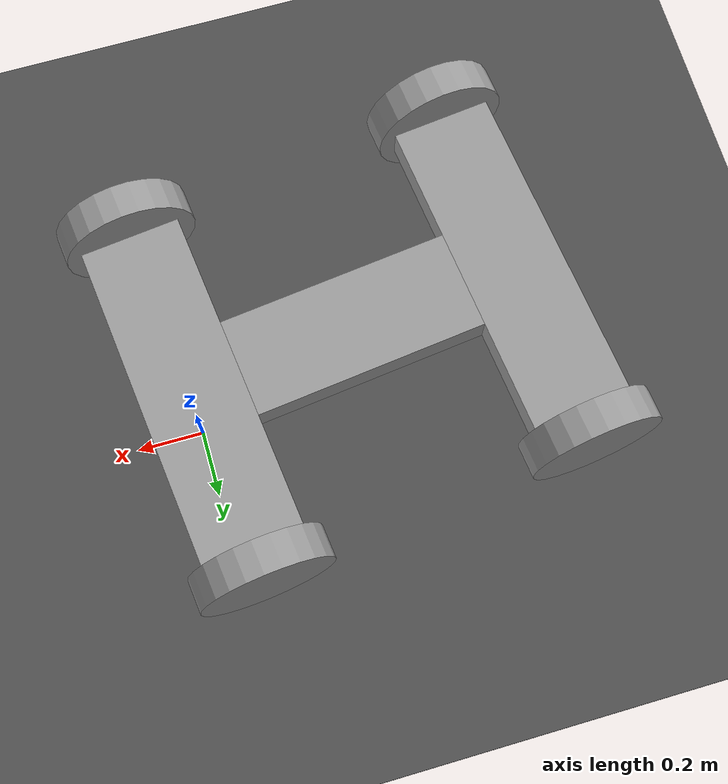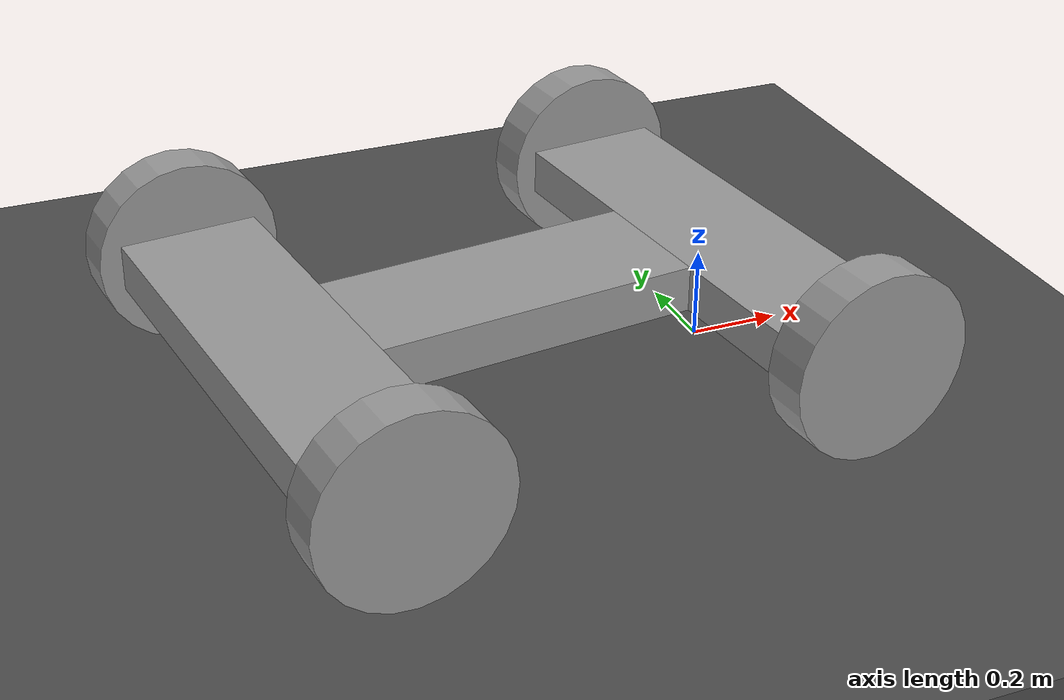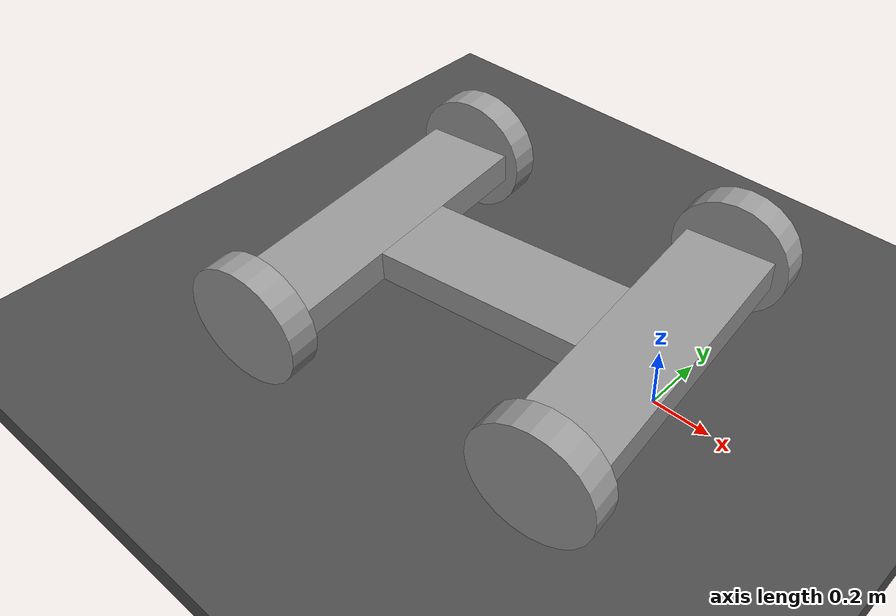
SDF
<sdf version="1.6">
 <world name="default">
  <model name="ground_plane">
   <static>1</static>
   <link name="link">
    <collision name="collision">
     <geometry><plane><normal>0 0 1</normal><size>100 100</size></plane></geometry>
     <surface><friction><ode><mu>100</mu><mu2>50</mu2></ode></friction></surface>
    </collision>
    <visual name="visual">
     <cast_shadows>0</cast_shadows>
     <geometry><plane><normal>0 0 1</normal><size>100 100</size></plane></geometry>
     <material>
      <script><uri>file://media/materials/scripts/gazebo.material</uri><name>Gazebo/Grey</name></script>
     </material>
    </visual>
   </link>
  </model>
  <model name="robot">
   <link name="link_0">
    <inertial>
     <mass>1</mass>
     <inertia>
      <ixx>0.166667</ixx>
      <ixy>0</ixy>
      <ixz>0</ixz>
      <iyy>0.166667</iyy>
      <iyz>0</iyz>
      <izz>0.166667</izz>
     </inertia>
    </inertial>
    <visual name="visual">
     <geometry><box><size>0.3 1 0.1</size></box></geometry>
     <material>
      <lighting>1</lighting>
      <script><uri>file://media/materials/scripts/gazebo.material</uri><name>Gazebo/Grey</name></script>
      <shader type="pixel"><normal_map>__default__</normal_map></shader>
      <ambient>0.3 0.3 0.3 1</ambient>
      <diffuse>0.7 0.7 0.7 1</diffuse>
      <specular>0.01 0.01 0.01 1</specular>
      <emissive>0 0 0 1</emissive>
     </material>
    </visual>
    <collision name="collision">
     <geometry><box><size>0.3 1 0.1</size></box></geometry>
     <surface>
      <friction>
       <ode><mu>1</mu><mu2>1</mu2><fdir1>0 0 0</fdir1><slip1>0</slip1><slip2>0</slip2></ode>
       <torsional>
        <coefficient>1</coefficient>
        <patch_radius>0</patch_radius>
        <surface_radius>0</surface_radius>
        <use_patch_radius>1</use_patch_radius>
        <ode><slip>0</slip></ode>
       </torsional>
      </friction>
      <bounce><restitution_coefficient>0</restitution_coefficient><threshold>1e+06</threshold></bounce>
      <contact>
       <collide_without_contact>0</collide_without_contact>
       <collide_without_contact_bitmask>1</collide_without_contact_bitmask>
       <collide_bitmask>1</collide_bitmask>
       <ode>
        <soft_cfm>0</soft_cfm>
        <soft_erp>0.2</soft_erp>
        <kp>1e+13</kp>
        <kd>1</kd>
        <max_vel>0.01</max_vel>
        <min_depth>0</min_depth>
       </ode>
       <bullet>
        <split_impulse>1</split_impulse>
        <split_impulse_penetration_threshold>-0.01</split_impulse_penetration_threshold>
        <soft_cfm>0</soft_cfm>
        <soft_erp>0.2</soft_erp>
        <kp>1e+13</kp>
        <kd>1</kd>
       </bullet>
      </contact>
     </surface>
    </collision>
   </link>
   <link name="link_0_0">
    <pose>-0.5 0 0 0 -0 0</pose>
    <inertial>
     <mass>1</mass>
     <inertia>
      <ixx>0.166667</ixx>
      <ixy>0</ixy>
      <ixz>0</ixz>
      <iyy>0.166667</iyy>
      <iyz>0</iyz>
      <izz>0.166667</izz>
     </inertia>
    </inertial>
    <visual name="visual">
     <geometry><box><size>0.7 0.3 0.1</size></box></geometry>
     <material>
      <lighting>1</lighting>
      <script><uri>file://media/materials/scripts/gazebo.material</uri><name>Gazebo/Grey</name></script>
      <shader type="pixel"><normal_map>__default__</normal_map></shader>
      <ambient>0.3 0.3 0.3 1</ambient>
      <diffuse>0.7 0.7 0.7 1</diffuse>
      <specular>0.01 0.01 0.01 1</specular>
      <emissive>0 0 0 1</emissive>
     </material>
    </visual>
    <collision name="collision">
     <geometry><box><size>0.7 0.3 0.1</size></box></geometry>
     <surface>
      <friction>
       <ode><mu>1</mu><mu2>1</mu2><fdir1>0 0 0</fdir1><slip1>0</slip1><slip2>0</slip2></ode>
       <torsional>
        <coefficient>1</coefficient>
        <patch_radius>0</patch_radius>
        <surface_radius>0</surface_radius>
        <use_patch_radius>1</use_patch_radius>
        <ode><slip>0</slip></ode>
       </torsional>
      </friction>
      <bounce><restitution_coefficient>0</restitution_coefficient><threshold>1e+06</threshold></bounce>
      <contact>
       <collide_without_contact>0</collide_without_contact>
       <collide_without_contact_bitmask>1</collide_without_contact_bitmask>
       <collide_bitmask>1</collide_bitmask>
       <ode>
        <soft_cfm>0</soft_cfm>
        <soft_erp>0.2</soft_erp>
        <kp>1e+13</kp>
        <kd>1</kd>
        <max_vel>0.01</max_vel>
        <min_depth>0</min_depth>
       </ode>
       <bullet>
        <split_impulse>1</split_impulse>
        <split_impulse_penetration_threshold>-0.01</split_impulse_penetration_threshold>
        <soft_cfm>0</soft_cfm>
        <soft_erp>0.2</soft_erp>
        <kp>1e+13</kp>
        <kd>1</kd>
       </bullet>
      </contact>
     </surface>
    </collision>
   </link>
   <link name="link_0_clone">
    <pose>-1 0 0 0 -0 0</pose>
    <inertial>
     <mass>1</mass>
     <inertia>
      <ixx>0.166667</ixx>
      <ixy>0</ixy>
      <ixz>0</ixz>
      <iyy>0.166667</iyy>
      <iyz>0</iyz>
      <izz>0.166667</izz>
     </inertia>
    </inertial>
    <visual name="visual">
     <geometry><box><size>0.3 1 0.1</size></box></geometry>
     <material>
      <lighting>1</lighting>
      <script><uri>file://media/materials/scripts/gazebo.material</uri><name>Gazebo/Grey</name></script>
      <shader type="pixel"><normal_map>__default__</normal_map></shader>
      <ambient>0.3 0.3 0.3 1</ambient>
      <diffuse>0.7 0.7 0.7 1</diffuse>
      <specular>0.01 0.01 0.01 1</specular>
      <emissive>0 0 0 1</emissive>
     </material>
    </visual>
    <collision name="collision">
     <geometry><box><size>0.3 1 0.1</size></box></geometry>
     <surface>
      <friction>
       <ode><mu>1</mu><mu2>1</mu2><fdir1>0 0 0</fdir1><slip1>0</slip1><slip2>0</slip2></ode>
       <torsional>
        <coefficient>1</coefficient>
        <patch_radius>0</patch_radius>
        <surface_radius>0</surface_radius>
        <use_patch_radius>1</use_patch_radius>
        <ode><slip>0</slip></ode>
       </torsional>
      </friction>
      <bounce><restitution_coefficient>0</restitution_coefficient><threshold>1e+06</threshold></bounce>
      <contact>
       <collide_without_contact>0</collide_without_contact>
       <collide_without_contact_bitmask>1</collide_without_contact_bitmask>
       <collide_bitmask>1</collide_bitmask>
       <ode>
        <soft_cfm>0</soft_cfm>
        <soft_erp>0.2</soft_erp>
        <kp>1e+13</kp>
        <kd>1</kd>
        <max_vel>0.01</max_vel>
        <min_depth>0</min_depth>
       </ode>
       <bullet>
        <split_impulse>1</split_impulse>
        <split_impulse_penetration_threshold>-0.01</split_impulse_penetration_threshold>
        <soft_cfm>0</soft_cfm>
        <soft_erp>0.2</soft_erp>
        <kp>1e+13</kp>
        <kd>1</kd>
       </bullet>
      </contact>
     </surface>
    </collision>
   </link>
   <link name="link_1_clone">
    <pose>0 0.550019 0 1.5707 -0 0</pose>
    <inertial>
     <mass>1</mass>
     <inertia><ixx>0.145833</ixx><ixy>0</ixy><ixz>0</ixz><iyy>0.145833</iyy><iyz>0</iyz><izz>0.125</izz></inertia>
    </inertial>
    <visual name="visual">
     <geometry><cylinder><radius>0.2</radius><length>0.1</length></cylinder></geometry>
     <material>
      <lighting>1</lighting>
      <script><uri>file://media/materials/scripts/gazebo.material</uri><name>Gazebo/Grey</name></script>
      <shader type="pixel"><normal_map>__default__</normal_map></shader>
      <ambient>0.3 0.3 0.3 1</ambient>
      <diffuse>0.7 0.7 0.7 1</diffuse>
      <specular>0.01 0.01 0.01 1</specular>
      <emissive>0 0 0 1</emissive>
     </material>
    </visual>
    <collision name="collision">
     <geometry><cylinder><radius>0.2</radius><length>0.1</length></cylinder></geometry>
     <surface>
      <friction>
       <ode><mu>1</mu><mu2>1</mu2><fdir1>0 0 0</fdir1><slip1>0</slip1><slip2>0</slip2></ode>
       <torsional>
        <coefficient>1</coefficient>
        <patch_radius>0</patch_radius>
        <surface_radius>0</surface_radius>
        <use_patch_radius>1</use_patch_radius>
        <ode><slip>0</slip></ode>
       </torsional>
      </friction>
      <bounce><restitution_coefficient>0</restitution_coefficient><threshold>1e+06</threshold></bounce>
      <contact>
       <collide_without_contact>0</collide_without_contact>
       <collide_without_contact_bitmask>1</collide_without_contact_bitmask>
       <collide_bitmask>1</collide_bitmask>
       <ode>
        <soft_cfm>0</soft_cfm>
        <soft_erp>0.2</soft_erp>
        <kp>1e+13</kp>
        <kd>1</kd>
        <max_vel>0.01</max_vel>
        <min_depth>0</min_depth>
       </ode>
       <bullet>
        <split_impulse>1</split_impulse>
        <split_impulse_penetration_threshold>-0.01</split_impulse_penetration_threshold>
        <soft_cfm>0</soft_cfm>
        <soft_erp>0.2</soft_erp>
        <kp>1e+13</kp>
        <kd>1</kd>
       </bullet>
      </contact>
     </surface>
    </collision>
   </link>
   <link name="link_1_clone_0">
    <pose>-1 -0.550019 0 1.5707 -0 0</pose>
    <inertial>
     <mass>1</mass>
     <inertia><ixx>0.145833</ixx><ixy>0</ixy><ixz>0</ixz><iyy>0.145833</iyy><iyz>0</iyz><izz>0.125</izz></inertia>
    </inertial>
    <visual name="visual">
     <geometry><cylinder><radius>0.2</radius><length>0.1</length></cylinder></geometry>
     <material>
      <lighting>1</lighting>
      <script><uri>file://media/materials/scripts/gazebo.material</uri><name>Gazebo/Grey</name></script>
      <shader type="pixel"><normal_map>__default__</normal_map></shader>
      <ambient>0.3 0.3 0.3 1</ambient>
      <diffuse>0.7 0.7 0.7 1</diffuse>
      <specular>0.01 0.01 0.01 1</specular>
      <emissive>0 0 0 1</emissive>
     </material>
    </visual>
    <collision name="collision">
     <geometry><cylinder><radius>0.2</radius><length>0.1</length></cylinder></geometry>
     <surface>
      <friction>
       <ode><mu>1</mu><mu2>1</mu2><fdir1>0 0 0</fdir1><slip1>0</slip1><slip2>0</slip2></ode>
       <torsional>
        <coefficient>1</coefficient>
        <patch_radius>0</patch_radius>
        <surface_radius>0</surface_radius>
        <use_patch_radius>1</use_patch_radius>
        <ode><slip>0</slip></ode>
       </torsional>
      </friction>
      <bounce><restitution_coefficient>0</restitution_coefficient><threshold>1e+06</threshold></bounce>
      <contact>
       <collide_without_contact>0</collide_without_contact>
       <collide_without_contact_bitmask>1</collide_without_contact_bitmask>
       <collide_bitmask>1</collide_bitmask>
       <ode>
        <soft_cfm>0</soft_cfm>
        <soft_erp>0.2</soft_erp>
        <kp>1e+13</kp>
        <kd>1</kd>
        <max_vel>0.01</max_vel>
        <min_depth>0</min_depth>
       </ode>
       <bullet>
        <split_impulse>1</split_impulse>
        <split_impulse_penetration_threshold>-0.01</split_impulse_penetration_threshold>
        <soft_cfm>0</soft_cfm>
        <soft_erp>0.2</soft_erp>
        <kp>1e+13</kp>
        <kd>1</kd>
       </bullet>
      </contact>
     </surface>
    </collision>
   </link>
   <link name="link_1_clone_0_clone">
    <pose>-1 0.550019 0 1.5707 -0 0</pose>
    <inertial>
     <mass>1</mass>
     <inertia><ixx>0.145833</ixx><ixy>0</ixy><ixz>0</ixz><iyy>0.145833</iyy><iyz>0</iyz><izz>0.125</izz></inertia>
    </inertial>
    <visual name="visual">
     <geometry><cylinder><radius>0.2</radius><length>0.1</length></cylinder></geometry>
     <material>
      <lighting>1</lighting>
      <script><uri>file://media/materials/scripts/gazebo.material</uri><name>Gazebo/Grey</name></script>
      <shader type="pixel"><normal_map>__default__</normal_map></shader>
      <ambient>0.3 0.3 0.3 1</ambient>
      <diffuse>0.7 0.7 0.7 1</diffuse>
      <specular>0.01 0.01 0.01 1</specular>
      <emissive>0 0 0 1</emissive>
     </material>
    </visual>
    <collision name="collision">
     <geometry><cylinder><radius>0.2</radius><length>0.1</length></cylinder></geometry>
     <surface>
      <friction>
       <ode><mu>1</mu><mu2>1</mu2><fdir1>0 0 0</fdir1><slip1>0</slip1><slip2>0</slip2></ode>
       <torsional>
        <coefficient>1</coefficient>
        <patch_radius>0</patch_radius>
        <surface_radius>0</surface_radius>
        <use_patch_radius>1</use_patch_radius>
        <ode><slip>0</slip></ode>
       </torsional>
      </friction>
      <bounce><restitution_coefficient>0</restitution_coefficient><threshold>1e+06</threshold></bounce>
      <contact>
       <collide_without_contact>0</collide_without_contact>
       <collide_without_contact_bitmask>1</collide_without_contact_bitmask>
       <collide_bitmask>1</collide_bitmask>
       <ode>
        <soft_cfm>0</soft_cfm>
        <soft_erp>0.2</soft_erp>
        <kp>1e+13</kp>
        <kd>1</kd>
        <max_vel>0.01</max_vel>
        <min_depth>0</min_depth>
       </ode>
       <bullet>
        <split_impulse>1</split_impulse>
        <split_impulse_penetration_threshold>-0.01</split_impulse_penetration_threshold>
        <soft_cfm>0</soft_cfm>
        <soft_erp>0.2</soft_erp>
        <kp>1e+13</kp>
        <kd>1</kd>
       </bullet>
      </contact>
     </surface>
    </collision>
   </link>
   <link name="link_1_clone_0_clone_0">
    <pose>0 -0.550019 0 1.5707 -0 0</pose>
    <inertial>
     <mass>1</mass>
     <inertia><ixx>0.145833</ixx><ixy>0</ixy><ixz>0</ixz><iyy>0.145833</iyy><iyz>0</iyz><izz>0.125</izz></inertia>
    </inertial>
    <visual name="visual">
     <geometry><cylinder><radius>0.2</radius><length>0.1</length></cylinder></geometry>
     <material>
      <lighting>1</lighting>
      <script><uri>file://media/materials/scripts/gazebo.material</uri><name>Gazebo/Grey</name></script>
      <shader type="pixel"><normal_map>__default__</normal_map></shader>
      <ambient>0.3 0.3 0.3 1</ambient>
      <diffuse>0.7 0.7 0.7 1</diffuse>
      <specular>0.01 0.01 0.01 1</specular>
      <emissive>0 0 0 1</emissive>
     </material>
    </visual>
    <collision name="collision">
     <geometry><cylinder><radius>0.2</radius><length>0.1</length></cylinder></geometry>
     <surface>
      <friction>
       <ode><mu>1</mu><mu2>1</mu2><fdir1>0 0 0</fdir1><slip1>0</slip1><slip2>0</slip2></ode>
       <torsional>
        <coefficient>1</coefficient>
        <patch_radius>0</patch_radius>
        <surface_radius>0</surface_radius>
        <use_patch_radius>1</use_patch_radius>
        <ode><slip>0</slip></ode>
       </torsional>
      </friction>
      <bounce><restitution_coefficient>0</restitution_coefficient><threshold>1e+06</threshold></bounce>
      <contact>
       <collide_without_contact>0</collide_without_contact>
       <collide_without_contact_bitmask>1</collide_without_contact_bitmask>
       <collide_bitmask>1</collide_bitmask>
       <ode>
        <soft_cfm>0</soft_cfm>
        <soft_erp>0.2</soft_erp>
        <kp>1e+13</kp>
        <kd>1</kd>
        <max_vel>0.01</max_vel>
        <min_depth>0</min_depth>
       </ode>
       <bullet>
        <split_impulse>1</split_impulse>
        <split_impulse_penetration_threshold>-0.01</split_impulse_penetration_threshold>
        <soft_cfm>0</soft_cfm>
        <soft_erp>0.2</soft_erp>
        <kp>1e+13</kp>
        <kd>1</kd>
       </bullet>
      </contact>
     </surface>
    </collision>
   </link>
   <joint name="link_0_0_JOINT_4" type="fixed">
    <parent>link_0_0</parent>
    <child>link_0</child>
    <physics>
     <ode><limit><cfm>0</cfm><erp>0.2</erp></limit><suspension><cfm>0</cfm><erp>0.2</erp></suspension></ode>
    </physics>
   </joint>
   <joint name="link_0_0_JOINT_5" type="fixed">
    <parent>link_0_0</parent>
    <child>link_0_clone</child>
    <physics>
     <ode><limit><cfm>0</cfm><erp>0.2</erp></limit><suspension><cfm>0</cfm><erp>0.2</erp></suspension></ode>
    </physics>
   </joint>
   <joint name="link_0_JOINT_1" type="revolute">
    <parent>link_0</parent>
    <child>link_1_clone</child>
    <axis>
     <xyz>0 0 1</xyz>
     <use_parent_model_frame>0</use_parent_model_frame>
     <limit>
      <lower>-1.79769e+308</lower>
      <upper>1.79769e+308</upper>
      <effort>-1</effort>
      <velocity>-1</velocity>
     </limit>
     <dynamics>
      <spring_reference>0</spring_reference>
      <spring_stiffness>0</spring_stiffness>
      <damping>0</damping>
      <friction>0</friction>
     </dynamics>
    </axis>
    <physics>
     <ode><limit><cfm>0</cfm><erp>0.2</erp></limit><suspension><cfm>0</cfm><erp>0.2</erp></suspension></ode>
    </physics>
   </joint>
   <joint name="link_0_JOINT_6" type="revolute">
    <parent>link_0</parent>
    <child>link_1_clone_0_clone_0</child>
    <axis>
     <xyz>0 0 1</xyz>
     <use_parent_model_frame>0</use_parent_model_frame>
     <limit>
      <lower>-1.79769e+308</lower>
      <upper>1.79769e+308</upper>
      <effort>-1</effort>
      <velocity>-1</velocity>
     </limit>
     <dynamics>
      <spring_reference>0</spring_reference>
      <spring_stiffness>0</spring_stiffness>
      <damping>0</damping>
     </dynamics>
    </axis>
    <physics>
     <ode><limit><cfm>0</cfm><erp>0.2</erp></limit><suspension><cfm>0</cfm><erp>0.2</erp></suspension></ode>
    </physics>
   </joint>
   <joint name="link_0_clone_JOINT_1" type="revolute">
    <parent>link_0_clone</parent>
    <child>link_1_clone_0_clone</child>
    <axis>
     <xyz>0 0 1</xyz>
     <use_parent_model_frame>0</use_parent_model_frame>
     <limit>
      <lower>-1.79769e+308</lower>
      <upper>1.79769e+308</upper>
      <effort>-1</effort>
      <velocity>-1</velocity>
     </limit>
     <dynamics>
      <spring_reference>0</spring_reference>
      <spring_stiffness>0</spring_stiffness>
      <damping>0</damping>
      <friction>0</friction>
     </dynamics>
    </axis>
    <physics>
     <ode><limit><cfm>0</cfm><erp>0.2</erp></limit><suspension><cfm>0</cfm><erp>0.2</erp></suspension></ode>
    </physics>
   </joint>
   <joint name="link_0_clone_JOINT_3" type="revolute">
    <parent>link_0_clone</parent>
    <child>link_1_clone_0</child>
    <axis>
     <xyz>0 0 1</xyz>
     <use_parent_model_frame>0</use_parent_model_frame>
     <limit>
      <lower>-1.79769e+308</lower>
      <upper>1.79769e+308</upper>
      <effort>-1</effort>
      <velocity>-1</velocity>
     </limit>
     <dynamics>
      <spring_reference>0</spring_reference>
      <spring_stiffness>0</spring_stiffness>
      <damping>0</damping>
      <friction>0</friction>
     </dynamics>
    </axis>
    <physics>
     <ode><limit><cfm>0</cfm><erp>0.2</erp></limit><suspension><cfm>0</cfm><erp>0.2</erp></suspension></ode>
    </physics>
   </joint>
   <static>0</static>
   <pose>-0.004957 -0.053856 0.250005 1e-06 0 0.118708</pose>
  </model>
  <model name="asphalt_plane">
   <static>1</static>
   <link name="link">
    <collision name="collision"><geometry><box><size>20 20 0.1</size></box></geometry></collision>
    <visual name="visual">
     <cast_shadows>0</cast_shadows>
     <geometry><box><size>20 20 0.1</size></box></geometry>
     <material>
      <script>
       <uri>model://asphalt_plane/materials/scripts</uri>
       <uri>model://asphalt_plane/materials/textures</uri>
       <name>vrc/asphalt</name>
      </script>
     </material>
    </visual>
   </link>
   <pose>-0.157604 -5.87884 0 0 -0 0</pose>
  </model>
 </world>
</sdf>
